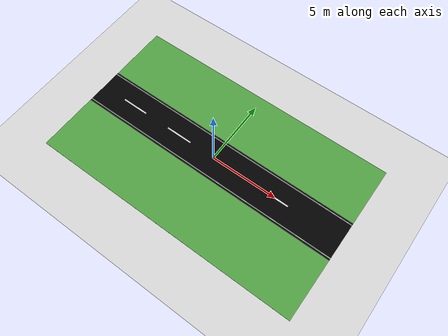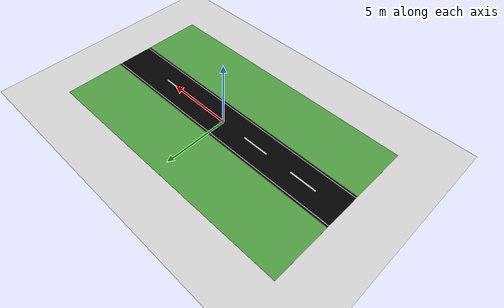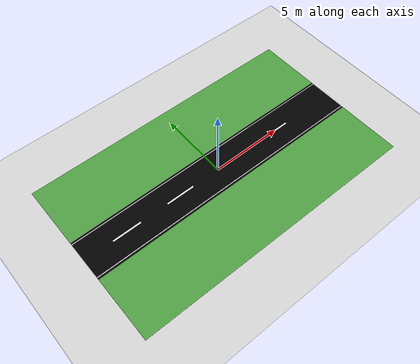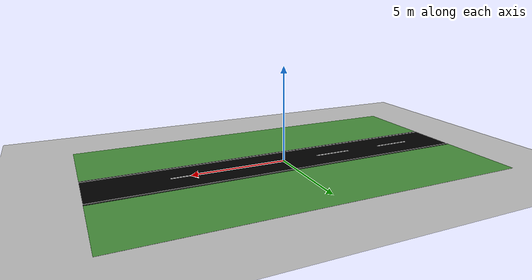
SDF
<sdf version="1.7">
 <world name="default">
  <model_database_enabled>false</model_database_enabled>
  <light name="sun" type="directional">
   <pose>0 0 10 0 -0 0</pose>
   <diffuse>0.8 0.8 0.8 1</diffuse>
   <specular>0.2 0.2 0.2 1</specular>
   <attenuation>
    <range>1000</range>
    <constant>0.9</constant>
    <linear>0.01</linear>
    <quadratic>0.001</quadratic>
   </attenuation>
   <direction>-0.5 0.1 -0.9</direction>
   <spot><inner_angle>0</inner_angle><outer_angle>0</outer_angle><falloff>0</falloff></spot>
  </light>
  <model name="ground_plane">
   <static>1</static>
   <link name="link">
    <collision name="collision">
     <geometry><plane><normal>0 0 1</normal><size>100 100</size></plane></geometry>
     <surface>
      <contact><collide_bitmask>65535</collide_bitmask></contact>
      <friction><ode><mu>100</mu><mu2>50</mu2></ode></friction>
     </surface>
    </collision>
    <visual name="visual">
     <cast_shadows>0</cast_shadows>
     <geometry><plane><normal>0 0 1</normal><size>100 100</size></plane></geometry>
     <material>
      <script><uri>file://media/materials/scripts/gazebo.material</uri><name>Gazebo/Grey</name></script>
     </material>
    </visual>
   </link>
  </model>
  <gravity>0 0 -9.8</gravity>
  <magnetic_field>6e-06 2.3e-05 -4.2e-05</magnetic_field>
  <atmosphere type="adiabatic"/>
  <physics type="ode">
   <max_step_size>0.001</max_step_size>
   <real_time_factor>1</real_time_factor>
   <real_time_update_rate>1000</real_time_update_rate>
  </physics>
  <scene><ambient>0.4 0.4 0.4 1</ambient><background>0.7 0.7 0.7 1</background><shadows>false</shadows></scene>
  <spherical_coordinates>
   <surface_model>EARTH_WGS84</surface_model>
   <latitude_deg>0</latitude_deg>
   <longitude_deg>0</longitude_deg>
   <elevation>0</elevation>
   <heading_deg>0</heading_deg>
  </spherical_coordinates>
  <model name="road">
   <static>1</static>
   <link name="link">
    <visual name="road_visual">
     <geometry><box><size>20 3 0.01</size></box></geometry>
     <material><ambient>0 0 0 1</ambient><diffuse>0 0 0 1</diffuse></material>
    </visual>
    <visual name="middle_line_1">
     <pose>-7 0 0.005 0 -0 0</pose>
     <geometry><box><size>2 0.1 0.01</size></box></geometry>
     <material><ambient>1 1 1 1</ambient></material>
    </visual>
    <visual name="middle_line_2">
     <pose>-3 0 0.005 0 -0 0</pose>
     <geometry><box><size>2 0.1 0.01</size></box></geometry>
     <material><ambient>1 1 1 1</ambient></material>
    </visual>
    <visual name="middle_line_3">
     <pose>1 0 0.005 0 -0 0</pose>
     <geometry><box><size>2 0.1 0.01</size></box></geometry>
     <material><ambient>1 1 1 1</ambient></material>
    </visual>
    <visual name="middle_line_4">
     <pose>5 0 0.005 0 -0 0</pose>
     <geometry><box><size>2 0.1 0.01</size></box></geometry>
     <material><ambient>1 1 1 1</ambient></material>
    </visual>
    <visual name="left_side_line">
     <pose>0 1.35 0.005 0 -0 0</pose>
     <geometry><box><size>20 0.05 0.01</size></box></geometry>
     <material><ambient>1 1 1 1</ambient></material>
    </visual>
    <visual name="right_side_line">
     <pose>0 -1.35 0.005 0 -0 0</pose>
     <geometry><box><size>20 0.05 0.01</size></box></geometry>
     <material><ambient>1 1 1 1</ambient></material>
    </visual>
    <collision name="road_collision"><geometry><box><size>20 3 0.01</size></box></geometry></collision>
   </link>
  </model>
  <model name="grass_left">
   <static>1</static>
   <link name="link">
    <visual name="visual">
     <geometry><plane><normal>0 0 1</normal><size>20 6</size></plane></geometry>
     <material>
      <script><uri>file://media/materials/scripts/gazebo.material</uri><name>Gazebo/Grass</name></script>
     </material>
    </visual>
   </link>
   <pose>0 3 0.001 0 0 0</pose>
  </model>
  <model name="grass_right">
   <static>1</static>
   <link name="link">
    <visual name="visual">
     <geometry><plane><normal>0 0 1</normal><size>20 6</size></plane></geometry>
     <material>
      <script><uri>file://media/materials/scripts/gazebo.material</uri><name>Gazebo/Grass</name></script>
     </material>
    </visual>
   </link>
   <pose>0 -3 0.001 0 0 0</pose>
  </model>
 </world>
</sdf>
